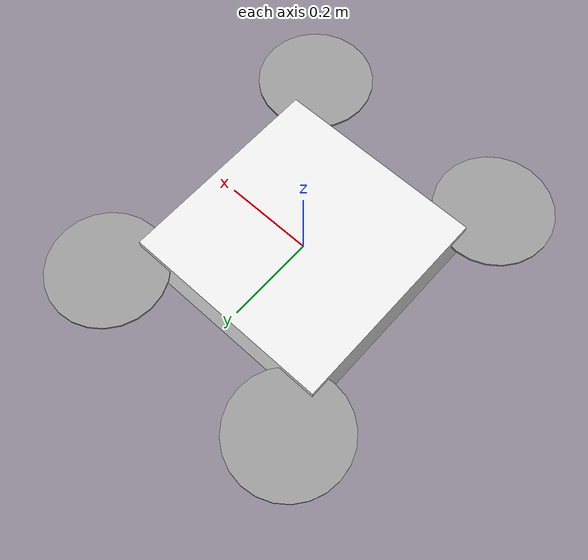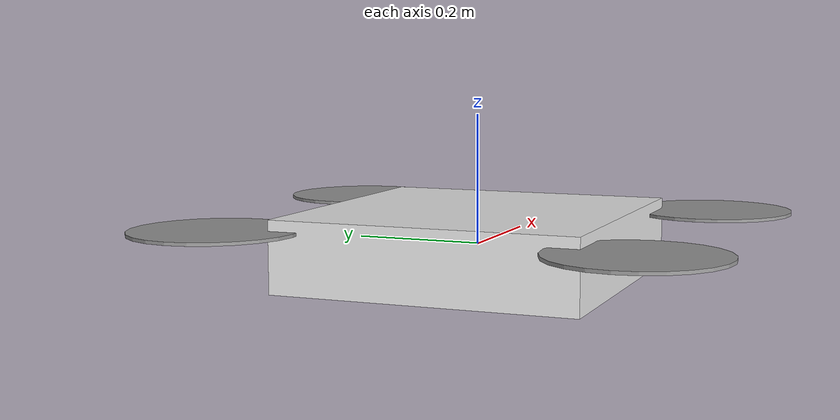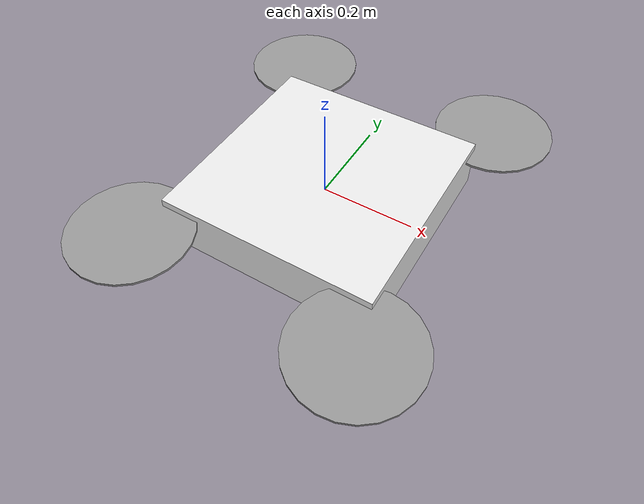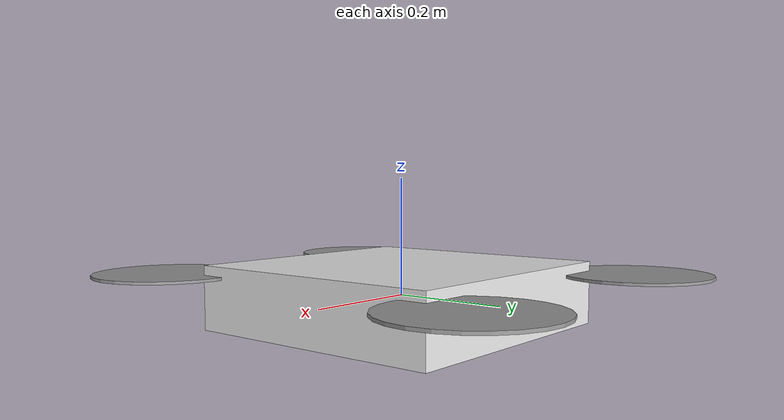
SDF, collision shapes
<sdf version='1.6'>
  <model name='BST_Quad'>
    <link name='base_link'>
      <pose frame=''>0 0 0 0 -0 0</pose>
      <inertial>
        <pose frame=''>0 0 0 0 -0 0</pose>
        <mass>9.5</mass>
        <inertia>
          <ixx>0.232</ixx>
          <ixy>1.983e-5</ixy>
          <ixz>0.016</ixz>
          <iyy>0.831</iyy>
          <iyz>2.108e-5</iyz>
          <izz>1.049</izz>
        </inertia>
      </inertial>
      <collision name='base_link_inertia_collision'>
        <pose frame=''>0 0 0 0 -0 0</pose>
        <geometry>
          <box>
            <size>0.47 0.47 0.11</size>
          </box>
        </geometry>
        <surface>
          <contact>
            <ode>
              <min_depth>0.001</min_depth>
              <max_vel>0</max_vel>
            </ode>
          </contact>
          <friction>
            <ode/>
          </friction>
        </surface>
      </collision>
      <visual name='base_link_inertia_visual'>
        <pose frame=''>0 0 0 0 -0 0</pose>
        <geometry>
          <mesh>
            <scale>1 1 1</scale>
            <uri>model://e2/meshes/quadv2_coarse.stl</uri>
          </mesh>
        </geometry>
        <material>
          <script>
            <name>Gazebo/White</name>
            <uri>file://media/materials/scripts/gazebo.material</uri>
          </script>
        </material>
      </visual>
      <gravity>1</gravity>
      <velocity_decay/>
      <!-- Laser Altimeter -->
      <sensor name="altimeter" type="ray">
          <pose>0.45 0.0 -0.05 0.0 1.57079632679 0.0</pose>
        <ray>
          <scan>
            <horizontal>
              <samples>1</samples>
              <resolution>1</resolution>
              <min_angle>0</min_angle>
              <max_angle>0</max_angle>
            </horizontal>
          </scan>
          <range>
            <min>0.1</min>
            <max>120.0</max>
            <resolution>0.01</resolution>
          </range>
        </ray>

        <always_on>1</always_on>
        <update_rate>50</update_rate>
        <visualize>true</visualize>
      </sensor>
    </link>
    <link name='/imu_link'>
      <pose frame=''>0 0 0 0 -0 0</pose>
      <inertial>
        <pose frame=''>0 0 0 0 -0 0</pose>
        <mass>0.015</mass>
        <inertia>
          <ixx>1e-05</ixx>
          <ixy>0</ixy>
          <ixz>0</ixz>
          <iyy>1e-05</iyy>
          <iyz>0</iyz>
          <izz>1e-05</izz>
        </inertia>
      </inertial>
    </link>
    <joint name='/imu_joint' type='revolute'>
      <child>/imu_link</child>
      <parent>base_link</parent>
      <axis>
        <xyz>1 0 0</xyz>
        <limit>
          <lower>0</lower>
          <upper>0</upper>
          <effort>0</effort>
          <velocity>0</velocity>
        </limit>
        <dynamics>
          <spring_reference>0</spring_reference>
          <spring_stiffness>0</spring_stiffness>
        </dynamics>
        <use_parent_model_frame>1</use_parent_model_frame>
      </axis>
    </joint>
    <link name='rotor_0'>
      <pose frame=''>0.24765 -0.31495 0.036 0 -0 0</pose>
      <inertial>
        <pose frame=''>0 0 0 0 -0 0</pose>
        <mass>0.005</mass>
        <inertia>
          <ixx>9.75e-07</ixx>
          <ixy>0</ixy>
          <ixz>0</ixz>
          <iyy>0.000273104</iyy>
          <iyz>0</iyz>
          <izz>0.000274004</izz>
        </inertia>
      </inertial>
      <collision name='rotor_0_collision'>
        <pose frame=''>0 0 0 0 -0 0</pose>
        <geometry>
          <cylinder>
            <length>0.005</length>
            <radius>0.128</radius>
          </cylinder>
        </geometry>
        <surface>
          <contact>
            <ode/>
          </contact>
          <friction>
            <ode/>
          </friction>
        </surface>
      </collision>
      <visual name='rotor_0_visual'>
        <pose frame=''>0 0 0 0 -0 0</pose>
        <geometry>
          <mesh>
            <scale>1 1 1</scale>
            <uri>model://e2/meshes/prop.stl</uri>
          </mesh>
        </geometry>
        <material>
          <script>
            <name>Gazebo/Grey</name>
            <uri>file://media/materials/scripts/gazebo.material</uri>
          </script>
        </material>
      </visual>
      <gravity>1</gravity>
      <velocity_decay/>
    </link>
    <joint name='rotor_0_joint' type='revolute'>
      <child>rotor_0</child>
      <parent>base_link</parent>
      <axis>
        <xyz>0 0 1</xyz>
        <limit>
          <lower>-1e+16</lower>
          <upper>1e+16</upper>
        </limit>
        <dynamics>
          <spring_reference>0</spring_reference>
          <spring_stiffness>0</spring_stiffness>
        </dynamics>
        <use_parent_model_frame>1</use_parent_model_frame>
      </axis>
    </joint>
    <link name='rotor_1'>
      <pose frame=''>0.24765 0.31495 0.036 0 -0 0</pose>
      <inertial>
        <pose frame=''>0 0 0 0 -0 0</pose>
        <mass>0.005</mass>
        <inertia>
          <ixx>9.75e-07</ixx>
          <ixy>0</ixy>
          <ixz>0</ixz>
          <iyy>0.000273104</iyy>
          <iyz>0</iyz>
          <izz>0.000274004</izz>
        </inertia>
      </inertial>
      <collision name='rotor_1_collision'>
        <pose frame=''>0 0 0 0 -0 0</pose>
        <geometry>
          <cylinder>
            <length>0.005</length>
            <radius>0.128</radius>
          </cylinder>
        </geometry>
        <surface>
          <contact>
            <ode/>
          </contact>
          <friction>
            <ode/>
          </friction>
        </surface>
      </collision>
      <visual name='rotor_1_visual'>
        <pose frame=''>0 0 0 0 -0 0</pose>
        <geometry>
          <mesh>
            <scale>1 1 1</scale>
            <uri>model://e2/meshes/prop.stl</uri>
          </mesh>
        </geometry>
        <material>
          <script>
            <name>Gazebo/Grey</name>
            <uri>file://media/materials/scripts/gazebo.material</uri>
          </script>
        </material>
      </visual>
      <gravity>1</gravity>
      <velocity_decay/>
    </link>
    <joint name='rotor_1_joint' type='revolute'>
      <child>rotor_1</child>
      <parent>base_link</parent>
      <axis>
        <xyz>0 0 1</xyz>
        <limit>
          <lower>-1e+16</lower>
          <upper>1e+16</upper>
        </limit>
        <dynamics>
          <spring_reference>0</spring_reference>
          <spring_stiffness>0</spring_stiffness>
        </dynamics>
        <use_parent_model_frame>1</use_parent_model_frame>
      </axis>
    </joint>
    <link name='rotor_2'>
      <pose frame=''>-0.24765 0.31495 0.036 0 -0 0</pose>
      <inertial>
        <pose frame=''>0 0 0 0 -0 0</pose>
        <mass>0.005</mass>
        <inertia>
          <ixx>9.75e-07</ixx>
          <ixy>0</ixy>
          <ixz>0</ixz>
          <iyy>0.000273104</iyy>
          <iyz>0</iyz>
          <izz>0.000274004</izz>
        </inertia>
      </inertial>
      <collision name='rotor_2_collision'>
        <pose frame=''>0 0 0 0 -0 0</pose>
        <geometry>
          <cylinder>
            <length>0.005</length>
            <radius>0.128</radius>
          </cylinder>
        </geometry>
        <surface>
          <contact>
            <ode/>
          </contact>
          <friction>
            <ode/>
          </friction>
        </surface>
      </collision>
      <visual name='rotor_2_visual'>
        <pose frame=''>0 0 0 0 -0 0</pose>
        <geometry>
          <mesh>
            <scale>1 1 1</scale>
            <uri>model://e2/meshes/prop.stl</uri>
          </mesh>
        </geometry>
        <material>
          <script>
            <name>Gazebo/Grey</name>
            <uri>file://media/materials/scripts/gazebo.material</uri>
          </script>
        </material>
      </visual>
      <gravity>1</gravity>
      <velocity_decay/>
    </link>
    <joint name='rotor_2_joint' type='revolute'>
      <child>rotor_2</child>
      <parent>base_link</parent>
      <axis>
        <xyz>0 0 1</xyz>
        <limit>
          <lower>-1e+16</lower>
          <upper>1e+16</upper>
        </limit>
        <dynamics>
          <spring_reference>0</spring_reference>
          <spring_stiffness>0</spring_stiffness>
        </dynamics>
        <use_parent_model_frame>1</use_parent_model_frame>
      </axis>
    </joint>
    <link name='rotor_3'>
      <pose frame=''>-0.24765 -0.31495 0.036 0 -0 0</pose>
      <inertial>
        <pose frame=''>0 0 0 0 -0 0</pose>
        <mass>0.005</mass>
        <inertia>
          <ixx>9.75e-07</ixx>
          <ixy>0</ixy>
          <ixz>0</ixz>
          <iyy>0.000273104</iyy>
          <iyz>0</iyz>
          <izz>0.000274004</izz>
        </inertia>
      </inertial>
      <collision name='rotor_3_collision'>
        <pose frame=''>0 0 0 0 -0 0</pose>
        <geometry>
          <cylinder>
            <length>0.005</length>
            <radius>0.128</radius>
          </cylinder>
        </geometry>
        <surface>
          <contact>
            <ode/>
          </contact>
          <friction>
            <ode/>
          </friction>
        </surface>
      </collision>
      <visual name='rotor_3_visual'>
        <pose frame=''>0 0 0 0 -0 0</pose>
        <geometry>
          <mesh>
            <scale>1 1 1</scale>
            <uri>model://e2/meshes/prop.stl</uri>
          </mesh>
        </geometry>
        <material>
          <script>
            <name>Gazebo/Grey</name>
            <uri>file://media/materials/scripts/gazebo.material</uri>
          </script>
        </material>
      </visual>
      <gravity>1</gravity>
      <velocity_decay/>
    </link>
    <joint name='rotor_3_joint' type='revolute'>
      <child>rotor_3</child>
      <parent>base_link</parent>
      <axis>
        <xyz>0 0 1</xyz>
        <limit>
          <lower>-1e+16</lower>
          <upper>1e+16</upper>
        </limit>
        <dynamics>
          <spring_reference>0</spring_reference>
          <spring_stiffness>0</spring_stiffness>
        </dynamics>
        <use_parent_model_frame>1</use_parent_model_frame>
      </axis>
    </joint>
    <plugin name='bst_sim::GzMultirotorBasePlugin' filename='libgz_multirotor_base_plugin.so'>
      <robotNamespace/>
      <linkName>base_link</linkName>
      <rotorVelocitySlowdownSim>10</rotorVelocitySlowdownSim>
    </plugin>
    <plugin name='bst_sim::GzMotorModel' filename='libgz_motor_model.so'>
      <robotNamespace/>
      <jointName>rotor_0_joint</jointName>
      <linkName>rotor_0</linkName>
      <turningDirection>ccw</turningDirection>
      <timeConstantUp>0.0125</timeConstantUp>
      <timeConstantDown>0.025</timeConstantDown>
      <maxRotVelocity>9700</maxRotVelocity>
      <motorConstant>5.828783e-07</motorConstant>
      <momentConstant>0.0808</momentConstant>
      <commandSubTopic>/gazebo/command/motor_speed</commandSubTopic>
      <motorNumber>0</motorNumber>
      <rotorDragCoefficient>1e-5</rotorDragCoefficient>
      <rollingMomentCoefficient>1e-06</rollingMomentCoefficient>
      <motorSpeedPubTopic>/motor_speed/0</motorSpeedPubTopic>
      <rotorVelocitySlowdownSim>10</rotorVelocitySlowdownSim>
    </plugin>
    <plugin name='bst_sim::GzMotorModel' filename='libgz_motor_model.so'>
      <robotNamespace/>
      <jointName>rotor_1_joint</jointName>
      <linkName>rotor_1</linkName>
      <turningDirection>cw</turningDirection>
      <timeConstantUp>0.0125</timeConstantUp>
      <timeConstantDown>0.025</timeConstantDown>
      <maxRotVelocity>9700</maxRotVelocity>
      <motorConstant>5.828783e-07</motorConstant>
      <momentConstant>0.0808</momentConstant>
      <commandSubTopic>/gazebo/command/motor_speed</commandSubTopic>
      <motorNumber>1</motorNumber>
      <rotorDragCoefficient>1e-5</rotorDragCoefficient>
      <rollingMomentCoefficient>1e-06</rollingMomentCoefficient>
      <motorSpeedPubTopic>/motor_speed/1</motorSpeedPubTopic>
      <rotorVelocitySlowdownSim>10</rotorVelocitySlowdownSim>
    </plugin>
    <plugin name='bst_sim::GzMotorModel' filename='libgz_motor_model.so'>
      <robotNamespace/>
      <jointName>rotor_2_joint</jointName>
      <linkName>rotor_2</linkName>
      <turningDirection>ccw</turningDirection>
      <timeConstantUp>0.0125</timeConstantUp>
      <timeConstantDown>0.025</timeConstantDown>
      <maxRotVelocity>9700</maxRotVelocity>
      <motorConstant>5.828783e-07</motorConstant>
      <momentConstant>0.0808</momentConstant>
      <commandSubTopic>/gazebo/command/motor_speed</commandSubTopic>
      <motorNumber>2</motorNumber>
      <rotorDragCoefficient>1e-5</rotorDragCoefficient>
      <rollingMomentCoefficient>1e-06</rollingMomentCoefficient>
      <motorSpeedPubTopic>/motor_speed/2</motorSpeedPubTopic>
      <rotorVelocitySlowdownSim>10</rotorVelocitySlowdownSim>
    </plugin>
    <plugin name='bst_sim::GzMotorModel' filename='libgz_motor_model.so'>
      <robotNamespace/>
      <jointName>rotor_3_joint</jointName>
      <linkName>rotor_3</linkName>
      <turningDirection>cw</turningDirection>
      <timeConstantUp>0.0125</timeConstantUp>
      <timeConstantDown>0.025</timeConstantDown>
      <maxRotVelocity>9700</maxRotVelocity>
      <motorConstant>5.828783e-07</motorConstant>
      <momentConstant>0.0808</momentConstant>
      <commandSubTopic>/gazebo/command/motor_speed</commandSubTopic>
      <motorNumber>3</motorNumber>
      <rotorDragCoefficient>1e-5</rotorDragCoefficient>
      <rollingMomentCoefficient>1e-06</rollingMomentCoefficient>
      <motorSpeedPubTopic>/motor_speed/3</motorSpeedPubTopic>
      <rotorVelocitySlowdownSim>10</rotorVelocitySlowdownSim>
    </plugin>
    <plugin name='bst_sim::GzBSTInterface' filename='libgz_bst_interface.so'>
      <robotNamespace/>
      <imuSubTopic>/imu</imuSubTopic>
      <bst_addr>INADDR_ANY</bst_addr>
      <bst_udp_port>55552</bst_udp_port>
      <motorSpeedCommandPubTopic>/gazebo/command/motor_speed</motorSpeedCommandPubTopic>
      <control_channels>
        <channel name='rotor1'>
          <input_index>0</input_index>
          <input_offset>0</input_offset>
          <input_scaling>9690</input_scaling>
          <zero_position_disarmed>0</zero_position_disarmed>
          <zero_position_armed>100</zero_position_armed>
          <joint_control_type>velocity</joint_control_type>
        </channel>
        <channel name='rotor2'>
          <input_index>1</input_index>
          <input_offset>0</input_offset>
          <input_scaling>9690</input_scaling>
          <zero_position_disarmed>0</zero_position_disarmed>
          <zero_position_armed>100</zero_position_armed>
          <joint_control_type>velocity</joint_control_type>
        </channel>
        <channel name='rotor3'>
          <input_index>2</input_index>
          <input_offset>0</input_offset>
          <input_scaling>9690</input_scaling>
          <zero_position_disarmed>0</zero_position_disarmed>
          <zero_position_armed>100</zero_position_armed>
          <joint_control_type>velocity</joint_control_type>
        </channel>
        <channel name='rotor4'>
          <input_index>3</input_index>
          <input_offset>0</input_offset>
          <input_scaling>9690</input_scaling>
          <zero_position_disarmed>0</zero_position_disarmed>
          <zero_position_armed>100</zero_position_armed>
          <joint_control_type>velocity</joint_control_type>
        </channel>
      </control_channels>
    </plugin>
    <static>0</static>
    <plugin name='bst_sim::GzImuPlugin' filename='libgz_imu_plugin.so'>
      <robotNamespace/>
      <linkName>/imu_link</linkName>
      <imuTopic>/imu</imuTopic>
      <gyroscopeNoiseDensity>0.0003394</gyroscopeNoiseDensity>
      <gyroscopeRandomWalk>3.8785e-05</gyroscopeRandomWalk>
      <gyroscopeBiasCorrelationTime>1000.0</gyroscopeBiasCorrelationTime>
      <gyroscopeTurnOnBiasSigma>0.0087</gyroscopeTurnOnBiasSigma>
      <accelerometerNoiseDensity>0.004</accelerometerNoiseDensity>
      <accelerometerRandomWalk>0.006</accelerometerRandomWalk>
      <accelerometerBiasCorrelationTime>300.0</accelerometerBiasCorrelationTime>
      <accelerometerTurnOnBiasSigma>0.196</accelerometerTurnOnBiasSigma>
    </plugin>
  </model>
</sdf>
